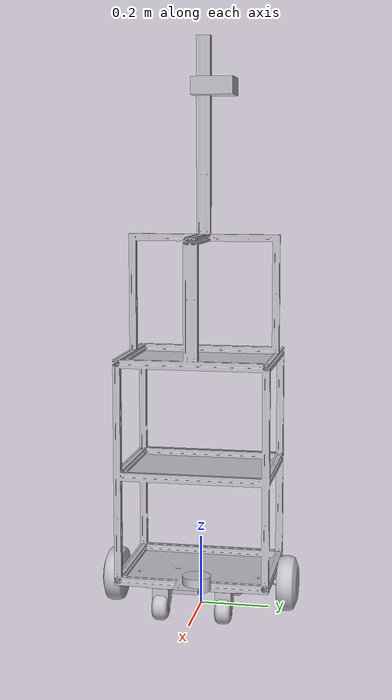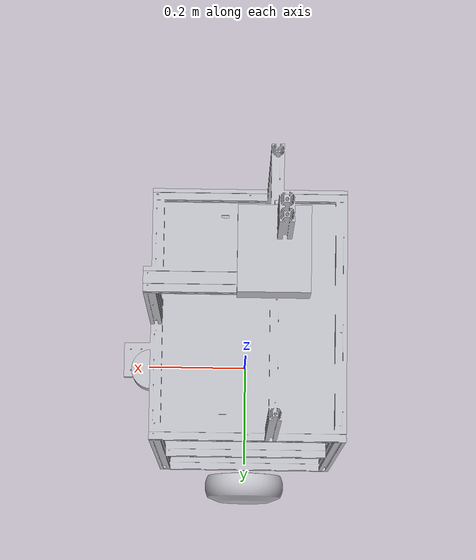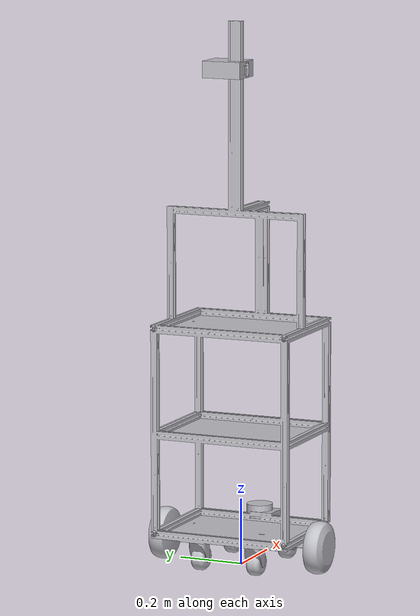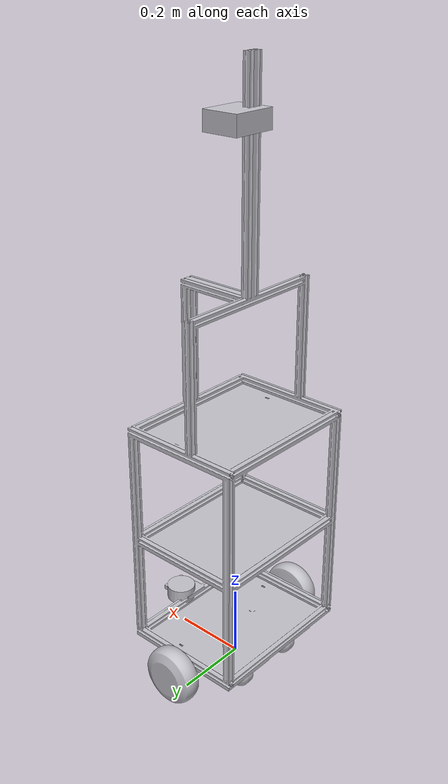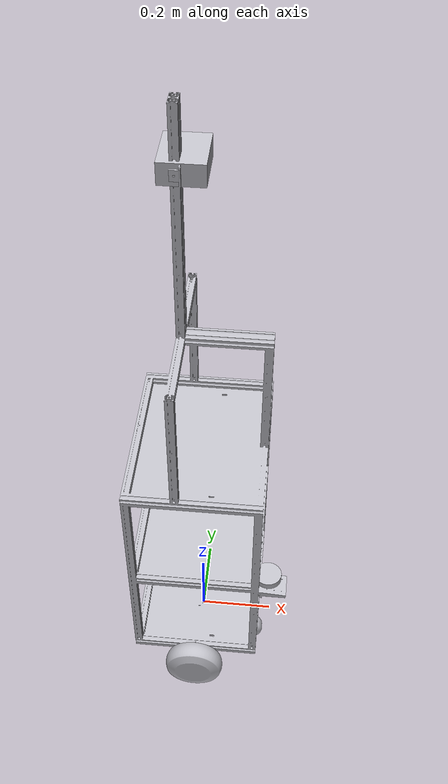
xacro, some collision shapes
<?xml version="1.0" ?>
<robot name="urdf2" xmlns:xacro="http://www.ros.org/wiki/xacro">

<xacro:include filename="$(find remy_description)/urdf/materials.xacro" />
<xacro:include filename="$(find remy_description)/urdf/urdf2.trans" />
<xacro:include filename="$(find remy_description)/urdf/urdf2.gazebo" />

<link name="base_footprint"/>

<!-- base_link agora é só um frame de referência (o que o diff_drive_controller
     e o Nav2 vão usar como "frente" do robô, seguindo a convenção X-forward). -->
<link name="base_link"/>

<joint name="base_joint" type="fixed">
  <parent link="base_footprint"/>
  <child link="base_link"/>
  <origin xyz="0 0 0" rpy="0 0 0"/>
</joint>

<!-- ===================== ROTAÇÃO DE CORREÇÃO ===================== -->
<joint name="chassis_joint" type="fixed">
  <parent link="base_link"/>
  <child link="chassis_link"/>
  <origin xyz="0 0 0" rpy="0 0 1.5708"/>
</joint>

<!-- ===================== CHASSIS (antigo base_link) ===================== -->
<link name="chassis_link">
  <inertial>
    <origin xyz="-4.812698831464578e-06 -0.005412827793001517 0.4978610665312513" rpy="0 0 0"/>
    <mass value="28.290295373190588"/>
    <inertia ixx="4.002643" iyy="4.211285" izz="0.944023" ixy="-5e-06" iyz="-0.046107" ixz="-0.000269"/>
  </inertial>
  <visual>
    <origin xyz="0 0 0" rpy="0 0 0"/>
    <geometry>
      <mesh filename="file://$(find remy_description)/meshes/base_link.stl" scale="0.001 0.001 0.001"/>
    </geometry>
    <material name="silver"/>
  </visual>
  <!-- Colisão simplificada: caixa representando o corpo principal -->
  <collision>
    <origin xyz="0 0 0.6" rpy="0 0 0"/>
    <geometry>
      <box size="0.45 0.40 1.0"/>
    </geometry>
  </collision>
</link>

<!-- ===================== LASER ===================== -->
<link name="laser">
  <inertial>
    <origin xyz="-0.02149999999999923 -0.023058640719597706 0.016872379763677364" rpy="0 0 0"/>
    <mass value="0.8145811794632783"/>
    <inertia ixx="0.000285" iyy="0.000285" izz="0.000359" ixy="0.0" iyz="-7e-06" ixz="0.0"/>
  </inertial>
  <visual>
    <origin xyz="-0.0215 0.190948 -0.125363" rpy="0 0 0"/>
    <geometry>
      <mesh filename="file://$(find remy_description)/meshes/limb2_v1_1.stl" scale="0.001 0.001 0.001"/>
    </geometry>
    <material name="silver"/>
  </visual>
  <!-- Colisão simplificada: cilindro pequeno -->
  <collision>
    <origin xyz="0 0 0" rpy="0 0 0"/>
    <geometry>
      <cylinder radius="0.04" length="0.04"/>
    </geometry>
  </collision>
</link>

<!-- ===================== ESTRUTURA SUPERIOR (limb3) ===================== -->
<link name="limb3_v1_1">
  <inertial>
    <origin xyz="-0.03254586377879881 -0.01226716800921993 4.8104092953416e-07" rpy="0 0 0"/>
    <mass value="0.3971989992607859"/>
    <inertia ixx="4.1e-05" iyy="0.000252" izz="0.000253" ixy="-0.0" iyz="0.0" ixz="-0.0"/>
  </inertial>
  <visual>
    <origin xyz="-0.0325 -0.0265 -1.500001" rpy="0 0 0"/>
    <geometry>
      <mesh filename="file://$(find remy_description)/meshes/limb3_v1_1.stl" scale="0.001 0.001 0.001"/>
    </geometry>
    <material name="silver"/>
  </visual>
  <!-- Colisão simplificada: caixa -->
  <collision>
    <origin xyz="0 0 0" rpy="0 0 0"/>
    <geometry>
      <box size="0.12 0.10 0.05"/>
    </geometry>
  </collision>
</link>

<!-- ===================== RODAS PRINCIPAIS (limb1) ===================== -->
<link name="limb1_v1_1">
  <inertial>
    <origin xyz="0.030385677711365494 -7.613557163816786e-08 2.0917380505469652e-07" rpy="0 0 0"/>
    <mass value="7.44897303914306"/>
    <inertia ixx="0.021214" iyy="0.012207" izz="0.012207" ixy="-0.0" iyz="0.0" ixz="0.0"/>
  </inertial>
  <visual>
    <origin xyz="-0.2235 -0.0 -0.074" rpy="0 0 0"/>
    <geometry>
      <mesh filename="file://$(find remy_description)/meshes/limb1_v1_1.stl" scale="0.001 0.001 0.001"/>
    </geometry>
    <material name="silver"/>
  </visual>
  <!-- Colisão simplificada: cilindro (roda) -->
  <collision>
    <origin xyz="0.025 0 -0.005" rpy="0 1.5708 0"/>
    <geometry>
      <cylinder radius="0.074" length="0.06"/>
    </geometry>
  </collision>
</link>

<link name="limb1_v1__1__1">
  <inertial>
    <origin xyz="-0.030385677711365383 7.613556716768832e-08 2.091738051795966e-07" rpy="0 0 0"/>
    <mass value="7.44897303914306"/>
    <inertia ixx="0.021214" iyy="0.012207" izz="0.012207" ixy="-0.0" iyz="-0.0" ixz="-0.0"/>
  </inertial>
  <visual>
    <origin xyz="0.2245 0.0 -0.074" rpy="0 0 0"/>
    <geometry>
      <mesh filename="file://$(find remy_description)/meshes/limb1_v1__1__1.stl" scale="0.001 0.001 0.001"/>
    </geometry>
    <material name="silver"/>
  </visual>
  <!-- Colisão simplificada: cilindro (roda) -->
  <collision>
    <origin xyz="-0.025 0 -0.005" rpy="0 1.5708 0"/>
    <geometry>
      <cylinder radius="0.074" length="0.06"/>
    </geometry>
  </collision>
</link>

<!-- ===================== RODAS OMNI - SUPORTE (limb4) ===================== -->
<link name="limb4_v1_1">
  <inertial>
    <origin xyz="2.4147350785597155e-15 -0.014044493135182023 -0.025676381178734692" rpy="0 0 0"/>
    <mass value="0.056127153093212874"/>
    <inertia ixx="3.7e-05" iyy="4.7e-05" izz="4e-05" ixy="-0.0" iyz="-5e-06" ixz="0.0"/>
  </inertial>
  <visual>
    <origin xyz="0.09 0.12 -0.093" rpy="0 0 0"/>
    <geometry>
      <mesh filename="file://$(find remy_description)/meshes/limb4_v1_1.stl" scale="0.001 0.001 0.001"/>
    </geometry>
    <material name="silver"/>
  </visual>
  <collision>
    <origin xyz="0.0 0.0 -0.01" rpy="0 0 0"/>
    <geometry>
      <cylinder radius="0.03" length="0.025"/>
    </geometry>
  </collision>
</link>

<link name="limb4_v1__1__1">
  <inertial>
    <origin xyz="2.4147350785597155e-15 -0.014044493135182023 -0.02567638117873454" rpy="0 0 0"/>
    <mass value="0.056127153093212874"/>
    <inertia ixx="3.7e-05" iyy="4.7e-05" izz="4e-05" ixy="-0.0" iyz="-5e-06" ixz="0.0"/>
  </inertial>
  <visual>
    <origin xyz="-0.09 -0.12 -0.093" rpy="0 0 0"/>
    <geometry>
      <mesh filename="file://$(find remy_description)/meshes/limb4_v1__1__1.stl" scale="0.001 0.001 0.001"/>
    </geometry>
    <material name="silver"/>
  </visual>
  <collision>
    <origin xyz="0.0 0.0 -0.01" rpy="0 0 0"/>
    <geometry>
      <cylinder radius="0.03" length="0.025"/>
    </geometry>
  </collision>
</link>

<link name="limb4_v1__2__1">
  <inertial>
    <origin xyz="2.4147350785597155e-15 -0.014044493135182023 -0.025676381178734553" rpy="0 0 0"/>
    <mass value="0.056127153093212874"/>
    <inertia ixx="3.7e-05" iyy="4.7e-05" izz="4e-05" ixy="-0.0" iyz="-5e-06" ixz="0.0"/>
  </inertial>
  <visual>
    <origin xyz="0.09 -0.12 -0.093" rpy="0 0 0"/>
    <geometry>
      <mesh filename="file://$(find remy_description)/meshes/limb4_v1__2__1.stl" scale="0.001 0.001 0.001"/>
    </geometry>
    <material name="silver"/>
  </visual>
  <collision>
    <origin xyz="0.0 0.0 -0.01" rpy="0 0 0"/>
    <geometry>
      <cylinder radius="0.03" length="0.025"/>
    </geometry>
  </collision>
</link>

<link name="limb4_v1__3__1">
  <inertial>
    <origin xyz="2.4147350785597155e-15 -0.014044493135182023 -0.025676381178734664" rpy="0 0 0"/>
    <mass value="0.056127153093212874"/>
    <inertia ixx="3.7e-05" iyy="4.7e-05" izz="4e-05" ixy="-0.0" iyz="-5e-06" ixz="0.0"/>
  </inertial>
  <visual>
    <origin xyz="-0.09 0.12 -0.093" rpy="0 0 0"/>
    <geometry>
      <mesh filename="file://$(find remy_description)/meshes/limb4_v1__3__1.stl" scale="0.001 0.001 0.001"/>
    </geometry>
    <material name="silver"/>
  </visual>
  <collision>
    <origin xyz="0.0 0.0 -0.01" rpy="0 0 0"/>
    <geometry>
      <cylinder radius="0.03" length="0.025"/>
    </geometry>
  </collision>
</link>

<!-- ===================== RODAS OMNI - ROLOS (limb5) ===================== -->
<link name="limb5_v1_1">
  <inertial>
    <origin xyz="-0.021999999672172046 -2.3592239273284576e-15 -2.5049406993105094e-15" rpy="0 0 0"/>
    <mass value="1.4096334164897137"/>
    <inertia ixx="0.00094" iyy="0.000666" izz="0.000666" ixy="0.0" iyz="0.0" ixz="0.0"/>
  </inertial>
  <visual>
    <origin xyz="0.068 0.145 -0.0331" rpy="0 0 0"/>
    <geometry>
      <mesh filename="file://$(find remy_description)/meshes/limb5_v1_1.stl" scale="0.001 0.001 0.001"/>
    </geometry>
    <material name="silver"/>
  </visual>
  <collision>
    <origin xyz="-0.02 0.0 0.0" rpy="1.5708 0 1.5708"/>
    <geometry>
      <cylinder radius="0.038" length="0.044"/>
    </geometry>
  </collision>
</link>

<link name="limb5_v1__1__1">
  <inertial>
    <origin xyz="-0.021999999672172033 -2.3592239273284576e-15 -2.491062911502695e-15" rpy="0 0 0"/>
    <mass value="1.4096334164897137"/>
    <inertia ixx="0.00094" iyy="0.000666" izz="0.000666" ixy="0.0" iyz="0.0" ixz="-0.0"/>
  </inertial>
  <visual>
    <origin xyz="-0.112 0.145 -0.0331" rpy="0 0 0"/>
    <geometry>
      <mesh filename="file://$(find remy_description)/meshes/limb5_v1__1__1.stl" scale="0.001 0.001 0.001"/>
    </geometry>
    <material name="silver"/>
  </visual>
  <collision>
    <origin xyz="-0.02 0.0 0.0" rpy="1.5708 0 1.5708"/>
    <geometry>
      <cylinder radius="0.038" length="0.044"/>
    </geometry>
  </collision>
</link>

<link name="limb5_v1__2__1">
  <inertial>
    <origin xyz="-0.021999999672172033 -2.345346139520643e-15 -2.366162821232365e-15" rpy="0 0 0"/>
    <mass value="1.4096334164897137"/>
    <inertia ixx="0.00094" iyy="0.000666" izz="0.000666" ixy="0.0" iyz="-0.0" ixz="0.0"/>
  </inertial>
  <visual>
    <origin xyz="-0.112 -0.095 -0.0331" rpy="0 0 0"/>
    <geometry>
      <mesh filename="file://$(find remy_description)/meshes/limb5_v1__2__1.stl" scale="0.001 0.001 0.001"/>
    </geometry>
    <material name="silver"/>
  </visual>
  <collision>
    <origin xyz="-0.02 0.0 0.0" rpy="1.5708 0 1.5708"/>
    <geometry>
      <cylinder radius="0.038" length="0.044"/>
    </geometry>
  </collision>
</link>

<link name="limb5_v1__3__1">
  <inertial>
    <origin xyz="-0.021999999672172046 -2.345346139520643e-15 -2.3800406090401793e-15" rpy="0 0 0"/>
    <mass value="1.4096334164897137"/>
    <inertia ixx="0.00094" iyy="0.000666" izz="0.000666" ixy="0.0" iyz="0.0" ixz="-0.0"/>
  </inertial>
  <visual>
    <origin xyz="0.068 -0.095 -0.0331" rpy="0 0 0"/>
    <geometry>
      <mesh filename="file://$(find remy_description)/meshes/limb5_v1__3__1.stl" scale="0.001 0.001 0.001"/>
    </geometry>
    <material name="silver"/>
  </visual>
  <collision>
    <origin xyz="-0.02 0.0 0.0" rpy="1.5708 0 1.5708"/>
    <geometry>
      <cylinder radius="0.038" length="0.044"/>
    </geometry>
  </collision>
</link>

<joint name="laser_joint" type="fixed">
  <origin xyz="0.0215 -0.190948 0.125363" rpy="0 0 -1.5708"/>
  <parent link="chassis_link"/>
  <child link="laser"/>
</joint>

<joint name="rig3" type="fixed">
  <origin xyz="0.0325 0.0265 1.500001" rpy="0 0 0"/>
  <parent link="chassis_link"/>
  <child link="limb3_v1_1"/>
</joint>

<joint name="rev1" type="continuous">
  <origin xyz="0.2235 0.0 0.074" rpy="0 0 0"/>
  <parent link="chassis_link"/>
  <child link="limb1_v1_1"/>
  <axis xyz="1 0 0" rpy="0 0 0"/>
</joint>

<joint name="rev2" type="continuous">
  <origin xyz="-0.2245 0.0 0.074" rpy="0 0 0"/>
  <parent link="chassis_link"/>
  <child link="limb1_v1__1__1"/>
  <axis xyz="1 0 0" rpy="0 0 0"/>
</joint>

<joint name="rev11" type="continuous">
  <origin xyz="-0.09 -0.12 0.093" rpy="0 0 0"/>
  <parent link="chassis_link"/>
  <child link="limb4_v1_1"/>
  <axis xyz="-0.0 -0.0 1.0"/>
  <dynamics damping="0.05" friction="0.02"/>
</joint>

<joint name="rev12" type="continuous">
  <origin xyz="0.09 0.12 0.093" rpy="0 0 0"/>
  <parent link="chassis_link"/>
  <child link="limb4_v1__1__1"/>
  <axis xyz="-0.0 -0.0 1.0"/>
  <dynamics damping="0.05" friction="0.02"/>
</joint>

<joint name="rev13" type="continuous">
  <origin xyz="-0.09 0.12 0.093" rpy="0 0 0"/>
  <parent link="chassis_link"/>
  <child link="limb4_v1__2__1"/>
  <axis xyz="-0.0 -0.0 1.0"/>
  <dynamics damping="0.05" friction="0.02"/>
</joint>

<joint name="rev14" type="continuous">
  <origin xyz="0.09 -0.12 0.093" rpy="0 0 0"/>
  <parent link="chassis_link"/>
  <child link="limb4_v1__3__1"/>
  <axis xyz="-0.0 -0.0 1.0"/>
  <dynamics damping="0.05" friction="0.02"/>
</joint>

<joint name="rev15" type="continuous">
  <origin xyz="0.022 -0.025 -0.0599" rpy="0 0 0"/>
  <parent link="limb4_v1_1"/>
  <child link="limb5_v1_1"/>
  <axis xyz="1.0 -0.0 0.0"/>
</joint>

<joint name="rev16" type="continuous">
  <origin xyz="0.022 -0.025 -0.0599" rpy="0 0 0"/>
  <parent link="limb4_v1__3__1"/>
  <child link="limb5_v1__1__1"/>
  <axis xyz="1.0 -0.0 0.0"/>
</joint>

<joint name="rev17" type="continuous">
  <origin xyz="0.022 -0.025 -0.0599" rpy="0 0 0"/>
  <parent link="limb4_v1__1__1"/>
  <child link="limb5_v1__2__1"/>
  <axis xyz="1.0 -0.0 0.0"/>
</joint>

<joint name="rev18" type="continuous">
  <origin xyz="0.022 -0.025 -0.0599" rpy="0 0 0"/>
  <parent link="limb4_v1__2__1"/>
  <child link="limb5_v1__3__1"/>
  <axis xyz="1.0 -0.0 0.0"/>
</joint>

<ros2_control name="urdf2_system" type="system">
  <hardware>
    <plugin>gz_ros2_control/GazeboSimSystem</plugin>
  </hardware>
  <joint name="rev1">
    <command_interface name="velocity">
      <param name="min">-10</param>
      <param name="max">10</param>
    </command_interface>
    <state_interface name="velocity"/>
    <state_interface name="position"/>
  </joint>
  <joint name="rev2">
    <command_interface name="velocity">
      <param name="min">-10</param>
      <param name="max">10</param>
    </command_interface>
    <state_interface name="velocity"/>
    <state_interface name="position"/>
  </joint>
</ros2_control>

</robot>

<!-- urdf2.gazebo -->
<robot name="urdf2" xmlns:xacro="http://www.ros.org/wiki/xacro" >

<xacro:property name="body_color" value="Gazebo/Silver" />

<gazebo>
<plugin filename="gz_ros2_control-system"
name="gz_ros2_control::GazeboSimROS2ControlPlugin">
<parameters>$(find remy_description)/config/controllers.yaml</parameters>
</plugin>
</gazebo>

<gazebo reference="chassis_link">
<material>${body_color}</material>
<mu1>0.2</mu1>
<mu2>0.2</mu2>
<self_collide>true</self_collide>
<gravity>true</gravity>
<laserRetro>0.0</laserRetro>
</gazebo>

<gazebo reference="limb2_v1_1">
<material>${body_color}</material>
<mu1>0.2</mu1>
<mu2>0.2</mu2>
<self_collide>true</self_collide>
<laserRetro>0.0</laserRetro>
</gazebo>

<gazebo reference="limb3_v1_1">
<material>${body_color}</material>
<mu1>0.2</mu1>
<mu2>0.2</mu2>
<self_collide>true</self_collide>
<laserRetro>0.0</laserRetro>
</gazebo>

<gazebo reference="limb1_v1_1">
<material>${body_color}</material>
<mu1>5.0</mu1>
<mu2>5.0</mu2>
<self_collide>true</self_collide>
<laserRetro>0.0</laserRetro>
</gazebo>

<gazebo reference="limb1_v1__1__1">
<material>${body_color}</material>
<mu1>5.0</mu1>
<mu2>5.0</mu2>
<self_collide>true</self_collide>
<laserRetro>0.0</laserRetro>
</gazebo>

<gazebo reference="limb4_v1_1">
<material>${body_color}</material>
<mu1>0.0</mu1>
<mu2>0.0</mu2>
<self_collide>false</self_collide>
<laserRetro>0.0</laserRetro>
</gazebo>

<gazebo reference="limb4_v1__1__1">
<material>${body_color}</material>
<mu1>0.0</mu1>
<mu2>0.0</mu2>
<self_collide>false</self_collide>
<laserRetro>0.0</laserRetro>
</gazebo>

<gazebo reference="limb4_v1__2__1">
<material>${body_color}</material>
<mu1>0.0</mu1>
<mu2>0.0</mu2>
<self_collide>false</self_collide>
<laserRetro>0.0</laserRetro>
</gazebo>

<gazebo reference="limb4_v1__3__1">
<material>${body_color}</material>
<mu1>0.0</mu1>
<mu2>0.0</mu2>
<self_collide>false</self_collide>
<laserRetro>0.0</laserRetro>
</gazebo>

<gazebo reference="limb5_v1_1">
<material>${body_color}</material>
<mu1>0.5</mu1>
<mu2>0.5</mu2>
<self_collide>false</self_collide>
<laserRetro>0.0</laserRetro>
</gazebo>

<gazebo reference="limb5_v1__1__1">
<material>${body_color}</material>
<mu1>0.5</mu1>
<mu2>0.5</mu2>
<self_collide>false</self_collide>
<laserRetro>0.0</laserRetro>
</gazebo>

<gazebo reference="limb5_v1__2__1">
<material>${body_color}</material>
<mu1>0.5</mu1>
<mu2>0.5</mu2>
<self_collide>false</self_collide>
<laserRetro>0.0</laserRetro>
</gazebo>

<gazebo reference="limb5_v1__3__1">
<material>${body_color}</material>
<mu1>0.5</mu1>
<mu2>0.5</mu2>
<self_collide>false</self_collide>
<laserRetro>0.0</laserRetro>
</gazebo>

</robot>
